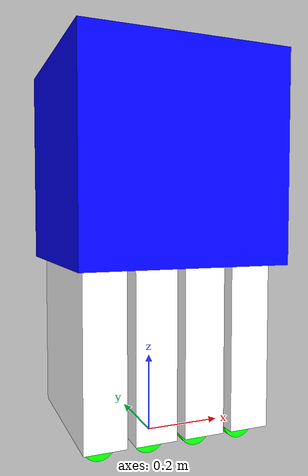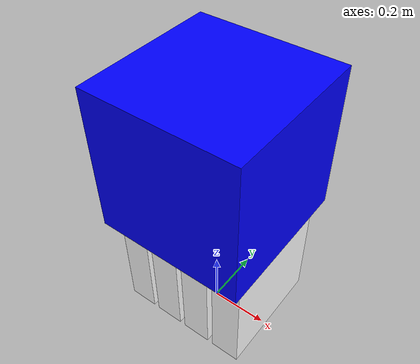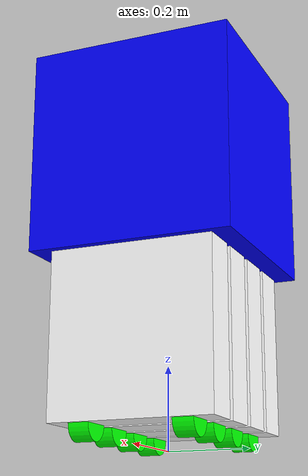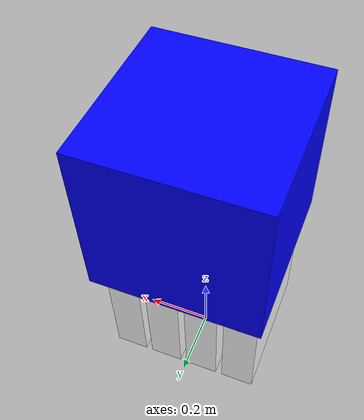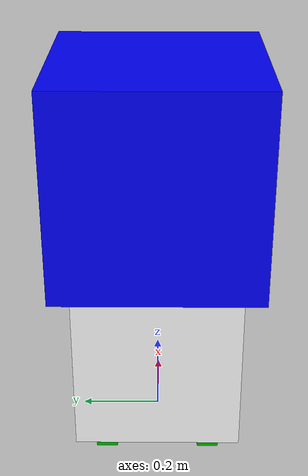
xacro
<?xml version="1.1" encoding="UTF-8"?>
<robot xmlns:xacro="http://www.ros.org/wiki/xacro">

  <xacro:include filename="materials.xacro" />

  <xacro:macro name="wheel" params="prefix side *origin *axis">
    <link name="${prefix}_${side}_wheel_link">
      <visual>
        <origin xyz="0 0 0" />
        <geometry>
          <cylinder radius="0.04" length="0.05" />
        </geometry>
        <material name="green" />
      </visual>
      <collision>
        <origin xyz="0 0 0" />
        <geometry>
          <cylinder radius="0.04" length="0.05" />
        </geometry>
      </collision>
    </link>

    <joint name="${prefix}_${side}_wheel_joint" type="continuous">
      <parent link="${prefix}_link" />
      <child link="${prefix}_${side}_wheel_link" />
      <xacro:insert_block name="origin" />
      <xacro:insert_block name="axis" />
    </joint>
  </xacro:macro>

  <link name="base_footprint" />

  <link name="base_link" />

  <joint name="base_joint" type="fixed">
    <parent link="base_footprint" />
    <child link="base_link" />
    <origin xyz="0 0 0.95" />
  </joint>

  <link name="lower_link">
    <visual>
      <origin xyz="0 0 0" />
      <geometry>
        <box size="0.5 0.5 0.5" />
      </geometry>
      <material name="blue" />
    </visual>
    <collision>
      <origin xyz="0 0 0" />
      <geometry>
        <box size="0.5 0.5 0.5" />
      </geometry>
    </collision>
  </link>

  <joint name="lower_joint" type="fixed">
    <parent link="base_link" />
    <child link="lower_link" />
    <origin xyz="0 0 -0.25" />
  </joint>

  <link name="leg_back_out_link">
    <visual>
      <origin xyz="0 0 0" />
      <geometry>
        <box size="0.1 0.4 0.5" />
      </geometry>
      <material name="white" />
    </visual>
    <collision>
      <origin xyz="0 0 0" />
      <geometry>
        <box size="0.1 0.4 0.5" />
      </geometry>
    </collision>
  </link>

  <joint name="leg_back_out_joint" type="fixed">
    <parent link="lower_link" />
    <child link="leg_back_out_link" />
    <origin xyz="-0.18 0 -0.40" />
  </joint>

  <link name="leg_back_in_link">
    <visual>
      <origin xyz="0 0 0" />
      <geometry>
        <box size="0.1 0.4 0.5" />
      </geometry>
      <material name="white" />
    </visual>
    <collision>
      <origin xyz="0 0 0" />
      <geometry>
        <box size="0.1 0.4 0.5" />
      </geometry>
    </collision>
  </link>

  <joint name="leg_back_in_joint" type="fixed">
    <parent link="lower_link" />
    <child link="leg_back_in_link" />
    <origin xyz="-0.06 0 -0.40" />
  </joint>

  <link name="leg_front_in_link">
    <visual>
      <origin xyz="0 0 0" />
      <geometry>
        <box size="0.1 0.4 0.5" />
      </geometry>
      <material name="white" />
    </visual>
    <collision>
      <origin xyz="0 0 0" />
      <geometry>
        <box size="0.1 0.4 0.5" />
      </geometry>
    </collision>
  </link>

  <joint name="leg_front_in_joint" type="fixed">
    <parent link="lower_link" />
    <child link="leg_front_in_link" />
    <origin xyz="0.06 0 -0.40" />
  </joint>

  <link name="leg_front_out_link">
    <visual>
      <origin xyz="0 0 0" />
      <geometry>
        <box size="0.1 0.4 0.5" />
      </geometry>
      <material name="white" />
    </visual>
    <collision>
      <origin xyz="0 0 0" />
      <geometry>
        <box size="0.1 0.4 0.5" />
      </geometry>
    </collision>
  </link>

  <joint name="leg_front_out_joint" type="fixed">
    <parent link="lower_link" />
    <child link="leg_front_out_link" />
    <origin xyz="0.18 0 -0.40" />
  </joint>

  <xacro:wheel prefix="leg_back_out" side="right">
    <origin xyz="0 -0.125 -0.25" rpy="${pi/2} 0 0" />
    <axis xyz="0 0 1" />
  </xacro:wheel>

  <xacro:wheel prefix="leg_back_out" side="left">
    <origin xyz="0 0.125 -0.25" rpy="-${pi/2} 0 0" />
    <axis xyz="0 0 1" />
  </xacro:wheel>

  <xacro:wheel prefix="leg_back_in" side="right">
    <origin xyz="0 -0.125 -0.25" rpy="${pi/2} 0 0" />
    <axis xyz="0 0 1" />
  </xacro:wheel>

  <xacro:wheel prefix="leg_back_in" side="left">
    <origin xyz="0 0.125 -0.25" rpy="-${pi/2} 0 0" />
    <axis xyz="0 0 1" />
  </xacro:wheel>

  <xacro:wheel prefix="leg_front_in" side="right">
    <origin xyz="0 -0.125 -0.25" rpy="${pi/2} 0 0" />
    <axis xyz="0 0 1" />
  </xacro:wheel>

  <xacro:wheel prefix="leg_front_in" side="left">
    <origin xyz="0 0.125 -0.25" rpy="-${pi/2} 0 0" />
    <axis xyz="0 0 1" />
  </xacro:wheel>

  <xacro:wheel prefix="leg_front_out" side="right">
    <origin xyz="0 -0.125 -0.25" rpy="${pi/2} 0 0" />
    <axis xyz="0 0 1" />
  </xacro:wheel>

  <xacro:wheel prefix="leg_front_out" side="left">
    <origin xyz="0 0.125 -0.25" rpy="-${pi/2} 0 0" />
    <axis xyz="0 0 1" />
  </xacro:wheel>

</robot>

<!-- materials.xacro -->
<robot xmlns:xacro="http://www.ros.org/wiki/xacro">

  <!-- Solid -->
  <material name="white">
    <color rgba="1.0 1.0 1.0 1.0" />
  </material>

  <material name="Gray">
    <color rgba="0.6 0.6 0.6 1.0" />
  </material>

  <material name="black">
    <color rgba="0.0 0.0 0.0 1.0" />
  </material>

  <material name="red">
    <color rgba="1.0 0.0 0.0 1.0" />
  </material>

  <material name="yellow">
    <color rgba="1.0 1.0 0.0 1.0" />
  </material>

  <material name="green">
    <color rgba="0.0 1.0 0.0 1.0" />
  </material>

  <material name="blue">
    <color rgba="0.0 0.0 1.0 1.0" />
  </material>

  <!-- Exotic -->
  <material name="paper">
    <color rgba="0.85 0.80 0.73 1.0" />
  </material>

  <material name="Salmon">
    <color rgba="0.9 0.5 0.5 1.0" />
  </material>

  <material name="Dark purple">
    <color rgba="0.3 0.1 0.4 1.0" />
  </material>

  <material name="Olive">
    <color rgba="0.5 0.6 0.3 1.0" />
  </material>

</robot>
